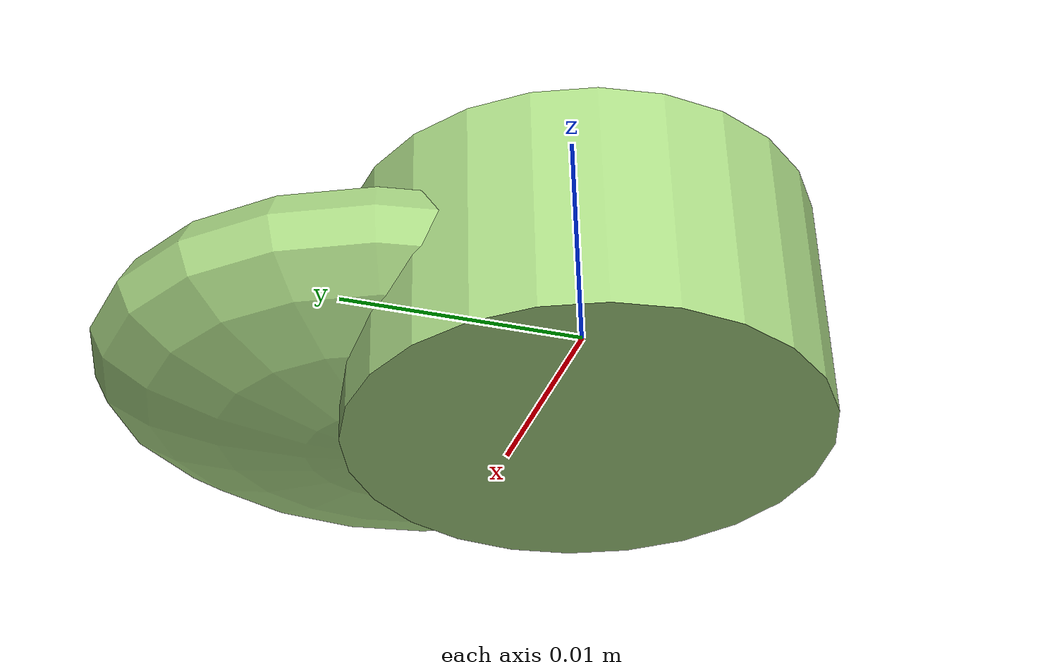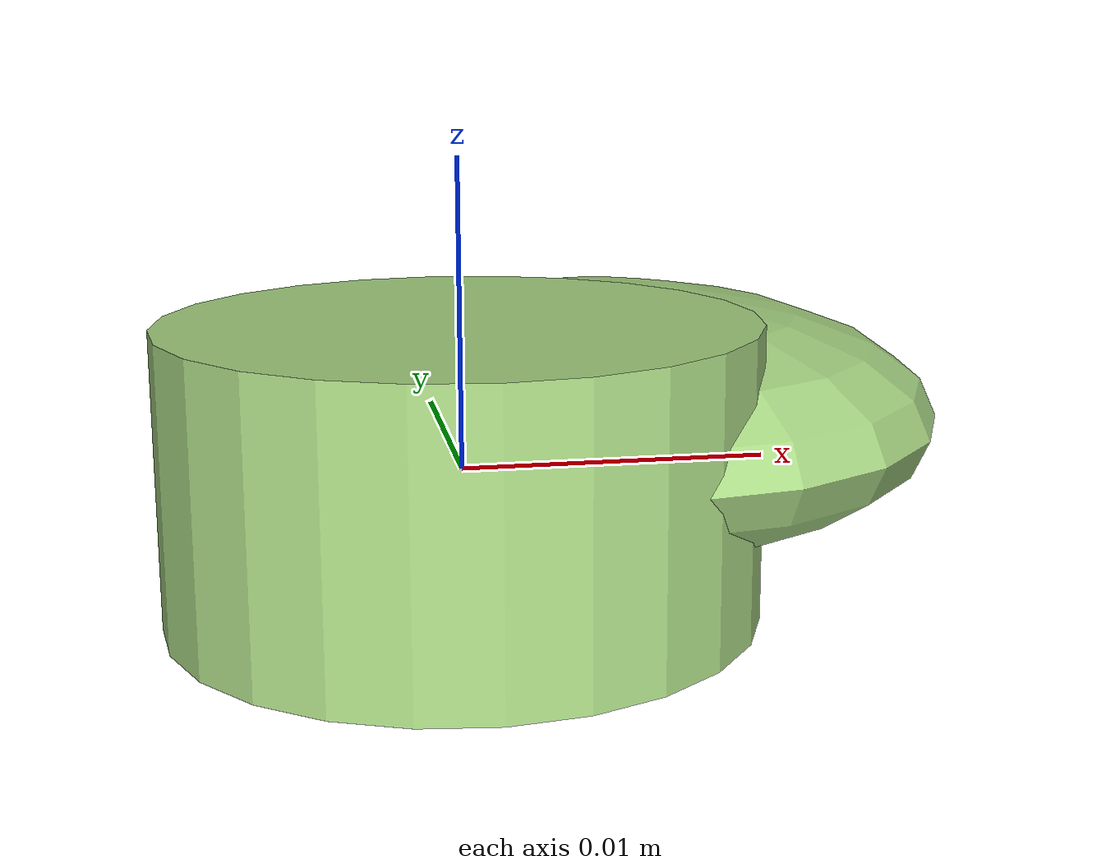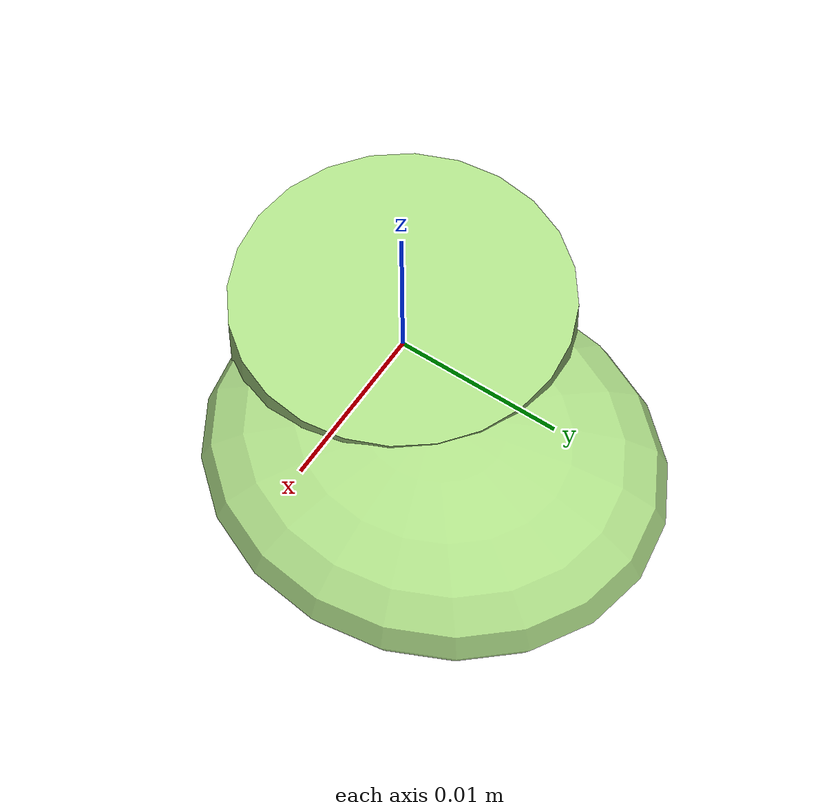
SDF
<?xml version="1.0" ?>
<!-- |    This document was autogenerated by xmacro from data/veggie_template/veggie_base.sdf.xacro  | -->
<!-- |    EDITING THIS FILE BY HAND IS NOT RECOMMENDED                                               | -->
<sdf version="1.8">
	<!-- Parameters -->
	<!-- Base -->
	<!-- Joint 0 -->
	<!-- Link 1 -->
	<!-- Joint 1 -->
	<!-- Link 2 -->
	<!-- Primitives -->
	<!-- All dimensions are half -->
	<!-- Object -->
	<model name="veggie">
		<!-- link0 -->
		<link name="link0">
			<inertial>
				<mass>0.002816599174083476</mass>
				<inertia>
					<ixx>8.730868534426092e-08</ixx>
					<ixy>0</ixy>
					<ixz>0</ixz>
					<iyy>8.730868534426092e-08</iyy>
					<iyz>0</iyz>
					<izz>1.3102698125006902e-07</izz>
				</inertia>
			</inertial>
			<visual name="link0_visual">
				<pose>0 0 0 0 0 0</pose>
				<geometry>
					<cylinder>
						<radius>0.009645679818164617</radius>
						<length>0.009636259257691794</length>
					</cylinder>
				</geometry>
				<material>
					<ambient>0.659 0.839 0.514 1</ambient>
					<diffuse>0.659 0.839 0.514 1</diffuse>
					<specular>0 0 0 0</specular>
					<emissive>0 0 0 1</emissive>
				</material>
			</visual>
			<collision name="link0_collision">
				<pose>0 0 0 0 0 0 </pose>
				<geometry>
					<cylinder>
						<radius>0.009645679818164617</radius>
						<length>0.009636259257691794</length>
					</cylinder>
				</geometry>
			</collision>
		</link>
		<!-- link1 -->
		<joint name="joint0" type="fixed">
			<pose relative_to="link0">0.005689166520940383 0.005882902660472483 0.0006371939561815301 0.0 0.0 0.0</pose>
			<parent>link0</parent>
			<child>link1</child>
		</joint>
		<link name="link1">
			<pose relative_to="joint0">0 0 0 0 0 0</pose>
			<inertial>
				<mass>0.0027058789762669164</mass>
				<inertia>
					<ixx>1.0370293432847882e-07</ixx>
					<ixy>0</ixy>
					<ixz>0</ixz>
					<iyy>8.363000081255271e-08</iyy>
					<iyz>0</iyz>
					<izz>1.6840817433010952e-07</izz>
				</inertia>
			</inertial>
			<visual name="link1_visual">
				<pose>0 0 0 0 0 0</pose>
				<geometry>
					<ellipsoid>
						<radii>0.011706794386995506 0.013196225645925836 0.0041814895883275326</radii>
					</ellipsoid>
				</geometry>
				<material>
					<ambient>0.659 0.839 0.514 1</ambient>
					<diffuse>0.659 0.839 0.514 1</diffuse>
					<specular>0 0 0 0</specular>
					<emissive>0 0 0 1</emissive>
				</material>
			</visual>
			<collision name="link1_collision">
				<pose>0 0 0 0 0 0 </pose>
				<geometry>
					<ellipsoid>
						<radii>0.011706794386995506 0.013196225645925836 0.0041814895883275326</radii>
					</ellipsoid>
				</geometry>
			</collision>
		</link>
		<!-- link2 -->
	</model>
</sdf>
